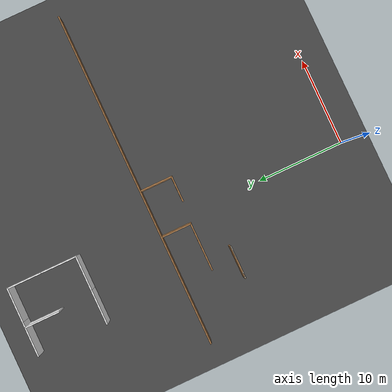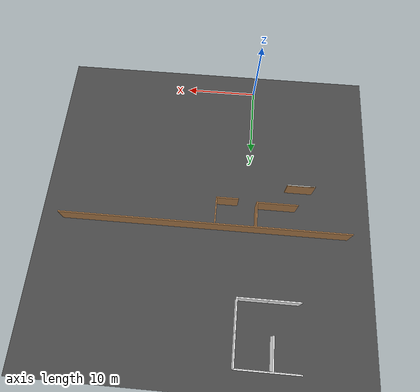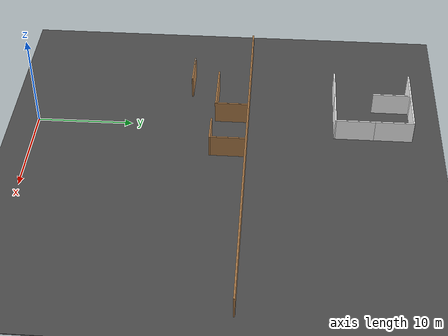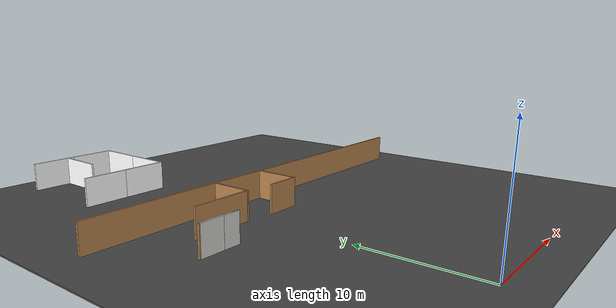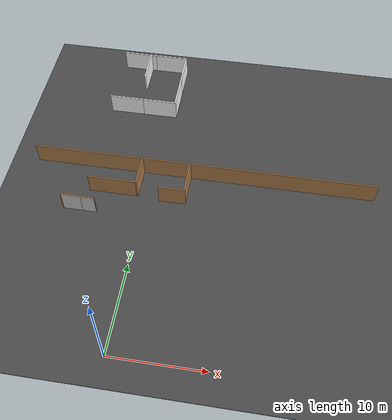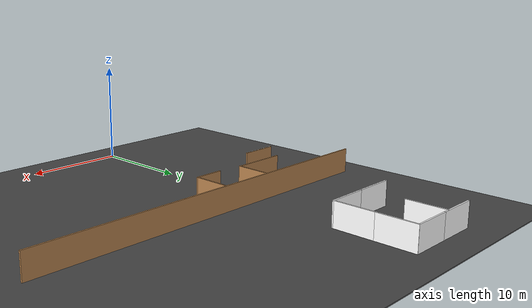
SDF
<sdf version="1.6">
 <world name="default">
  <model name="ground_plane">
   <static>1</static>
   <link name="link">
    <collision name="collision">
     <geometry><plane><normal>0 0 1</normal><size>100 100</size></plane></geometry>
     <surface><friction><ode><mu>100</mu><mu2>50</mu2></ode></friction></surface>
    </collision>
    <visual name="visual">
     <cast_shadows>0</cast_shadows>
     <geometry><plane><normal>0 0 1</normal><size>100 100</size></plane></geometry>
     <material>
      <script><uri>file://media/materials/scripts/gazebo.material</uri><name>Gazebo/Grey</name></script>
     </material>
    </visual>
   </link>
  </model>
  <model name="asphalt_plane">
   <static>1</static>
   <link name="link">
    <collision name="collision"><geometry><box><size>100 100 0.1</size></box></geometry></collision>
    <visual name="visual">
     <cast_shadows>0</cast_shadows>
     <geometry><box><size>100 100 0.1</size></box></geometry>
     <material>
      <script>
       <uri>model://asphalt_plane/materials/scripts</uri>
       <uri>model://asphalt_plane/materials/textures</uri>
       <name>vrc/asphalt</name>
      </script>
     </material>
    </visual>
   </link>
  </model>
  <model name="Hard_wall_wall_6_clone_7">
   <pose>-7.08346 16.0324 0 0 -0 1.57079</pose>
   <link name="Wall_0">
    <collision name="Wall_0_Collision">
     <geometry><box><size>3 0.15 2.5</size></box></geometry>
     <pose>0 0 1.25 0 -0 0</pose>
    </collision>
    <visual name="Wall_0_Visual">
     <pose>0 0 1.25 0 -0 0</pose>
     <geometry><box><size>3 0.15 2.5</size></box></geometry>
     <material>
      <script><uri>file://media/materials/scripts/gazebo.material</uri><name>Gazebo/CeilingTiled</name></script>
      <ambient>1 1 1 1</ambient>
     </material>
     <meta><layer>0</layer></meta>
    </visual>
    <pose>0 0 0 0 -0 1.5708</pose>
   </link>
   <static>1</static>
  </model>
  <model name="Medium_wall_wall_2">
   <pose>-0.863663 31.3819 0 0 -0 0</pose>
   <link name="Wall_0">
    <collision name="Wall_0_Collision">
     <geometry><box><size>4 0.15 2.5</size></box></geometry>
     <pose>0 0 1.25 0 -0 0</pose>
    </collision>
    <visual name="Wall_0_Visual">
     <pose>0 0 1.25 0 -0 0</pose>
     <geometry><box><size>4 0.15 2.5</size></box></geometry>
     <material>
      <script><uri>file://media/materials/scripts/gazebo.material</uri><name>Gazebo/Medium_walls</name></script>
      <ambient>1 1 1 1</ambient>
     </material>
     <meta><layer>0</layer></meta>
    </visual>
   </link>
   <static>1</static>
  </model>
  <model name="Medium_wall_wall_2_clone">
   <pose>-4.86366 31.3819 0 0 -0 0</pose>
   <link name="Wall_0">
    <collision name="Wall_0_Collision">
     <geometry><box><size>4 0.15 2.5</size></box></geometry>
     <pose>0 0 1.25 0 -0 0</pose>
    </collision>
    <visual name="Wall_0_Visual">
     <pose>0 0 1.25 0 -0 0</pose>
     <geometry><box><size>4 0.15 2.5</size></box></geometry>
     <material>
      <script><uri>file://media/materials/scripts/gazebo.material</uri><name>Gazebo/Medium_walls</name></script>
      <ambient>1 1 1 1</ambient>
     </material>
     <meta><layer>0</layer></meta>
    </visual>
   </link>
   <static>1</static>
  </model>
  <model name="Medium_wall_wall_2_clone_3">
   <pose>-0.863663 39.3819 0 0 -0 0</pose>
   <link name="Wall_0">
    <collision name="Wall_0_Collision">
     <geometry><box><size>4 0.15 2.5</size></box></geometry>
     <pose>0 0 1.25 0 -0 0</pose>
    </collision>
    <visual name="Wall_0_Visual">
     <pose>0 0 1.25 0 -0 0</pose>
     <geometry><box><size>4 0.15 2.5</size></box></geometry>
     <material>
      <script><uri>file://media/materials/scripts/gazebo.material</uri><name>Gazebo/Medium_walls</name></script>
      <ambient>1 1 1 1</ambient>
     </material>
     <meta><layer>0</layer></meta>
    </visual>
   </link>
   <static>1</static>
  </model>
  <model name="Medium_wall_wall_2_clone_4">
   <pose>-4.86366 39.3819 0 0 -0 0</pose>
   <link name="Wall_0">
    <collision name="Wall_0_Collision">
     <geometry><box><size>4 0.15 2.5</size></box></geometry>
     <pose>0 0 1.25 0 -0 0</pose>
    </collision>
    <visual name="Wall_0_Visual">
     <pose>0 0 1.25 0 -0 0</pose>
     <geometry><box><size>4 0.15 2.5</size></box></geometry>
     <material>
      <script><uri>file://media/materials/scripts/gazebo.material</uri><name>Gazebo/Medium_walls</name></script>
      <ambient>1 1 1 1</ambient>
     </material>
     <meta><layer>0</layer></meta>
    </visual>
   </link>
   <static>1</static>
  </model>
  <model name="Medium_wall_wall_3">
   <pose>1.06218 33.4428 0 0 -0 1.57079</pose>
   <link name="Wall_0">
    <collision name="Wall_0_Collision">
     <geometry><box><size>4 0.15 2.5</size></box></geometry>
     <pose>0 0 1.25 0 -0 0</pose>
    </collision>
    <visual name="Wall_0_Visual">
     <pose>0 0 1.25 0 -0 0</pose>
     <geometry><box><size>4 0.15 2.5</size></box></geometry>
     <material>
      <script><uri>file://media/materials/scripts/gazebo.material</uri><name>Gazebo/Medium_walls</name></script>
      <ambient>1 1 1 1</ambient>
     </material>
     <meta><layer>0</layer></meta>
    </visual>
   </link>
   <static>1</static>
  </model>
  <model name="Medium_wall_wall_3_clone">
   <pose>1.06218 37.4428 0 0 -0 1.57079</pose>
   <link name="Wall_0">
    <collision name="Wall_0_Collision">
     <geometry><box><size>4 0.15 2.5</size></box></geometry>
     <pose>0 0 1.25 0 -0 0</pose>
    </collision>
    <visual name="Wall_0_Visual">
     <pose>0 0 1.25 0 -0 0</pose>
     <geometry><box><size>4 0.15 2.5</size></box></geometry>
     <material>
      <script><uri>file://media/materials/scripts/gazebo.material</uri><name>Gazebo/Medium_walls</name></script>
      <ambient>1 1 1 1</ambient>
     </material>
     <meta><layer>0</layer></meta>
    </visual>
   </link>
   <static>1</static>
  </model>
  <model name="Medium_wall_wall_3_clone_2">
   <pose>-3.48128 37.3947 0 0 -0 1.57079</pose>
   <link name="Wall_0">
    <collision name="Wall_0_Collision">
     <geometry><box><size>4 0.15 2.5</size></box></geometry>
     <pose>0 0 1.25 0 -0 0</pose>
    </collision>
    <visual name="Wall_0_Visual">
     <pose>0 0 1.25 0 -0 0</pose>
     <geometry><box><size>4 0.15 2.5</size></box></geometry>
     <material>
      <script><uri>file://media/materials/scripts/gazebo.material</uri><name>Gazebo/Medium_walls</name></script>
      <ambient>1 1 1 1</ambient>
     </material>
     <meta><layer>0</layer></meta>
    </visual>
   </link>
   <static>1</static>
  </model>
  <model name="Soft_wall_v1_1">
   <pose>-14.3408 -3.86286 0 0 -0 0</pose>
   <link name="Wall_112">
    <collision name="Wall_112_Collision">
     <geometry><box><size>3.75 0.15 2.5</size></box></geometry>
     <pose>0 0 1.25 0 -0 0</pose>
    </collision>
    <visual name="Wall_112_Visual">
     <pose>0 0 1.25 0 -0 0</pose>
     <geometry><box><size>3.75 0.15 2.5</size></box></geometry>
     <material>
      <script><uri>file://media/materials/scripts/gazebo.material</uri><name>Gazebo/Wood</name></script>
      <ambient>1 1 1 1</ambient>
     </material>
     <meta><layer>0</layer></meta>
    </visual>
    <pose>18.799 24.2454 0 0 0 -1.5708</pose>
   </link>
   <link name="Wall_113">
    <collision name="Wall_113_Collision">
     <geometry><box><size>3 0.15 2.5</size></box></geometry>
     <pose>0 0 1.25 0 -0 0</pose>
    </collision>
    <visual name="Wall_113_Visual">
     <pose>0 0 1.25 0 -0 0</pose>
     <geometry><box><size>3 0.15 2.5</size></box></geometry>
     <material>
      <script><uri>file://media/materials/scripts/gazebo.material</uri><name>Gazebo/Wood</name></script>
      <ambient>1 1 1 1</ambient>
     </material>
     <meta><layer>0</layer></meta>
    </visual>
    <pose>17.374 22.4454 0 0 -0 3.14159</pose>
   </link>
   <link name="Wall_115">
    <collision name="Wall_115_Collision">
     <geometry><box><size>3.5 0.15 2.5</size></box></geometry>
     <pose>0 0 1.25 0 -0 0</pose>
    </collision>
    <visual name="Wall_115_Visual">
     <pose>0 0 1.25 0 -0 0</pose>
     <geometry><box><size>3.5 0.15 2.5</size></box></geometry>
     <material>
      <script><uri>file://media/materials/scripts/gazebo.material</uri><name>Gazebo/Wood</name></script>
      <ambient>1 1 1 1</ambient>
     </material>
     <meta><layer>0</layer></meta>
    </visual>
    <pose>13.3845 24.3704 0 0 0 -1.5708</pose>
   </link>
   <link name="Wall_125">
    <collision name="Wall_125_Collision">
     <geometry><box><size>5.5 0.15 2.5</size></box></geometry>
     <pose>0 0 1.25 0 -0 0</pose>
    </collision>
    <visual name="Wall_125_Visual">
     <pose>0 0 1.25 0 -0 0</pose>
     <geometry><box><size>5.5 0.15 2.5</size></box></geometry>
     <material>
      <script><uri>file://media/materials/scripts/gazebo.material</uri><name>Gazebo/Wood</name></script>
      <ambient>1 1 1 1</ambient>
     </material>
     <meta><layer>0</layer></meta>
    </visual>
    <pose>10.7066 22.7229 0 0 -0 0</pose>
   </link>
   <link name="Wall_134">
    <collision name="Wall_134_Collision">
     <geometry><box><size>3.75 0.15 2.5</size></box></geometry>
     <pose>0 0 1.25 0 -0 0</pose>
    </collision>
    <visual name="Wall_134_Visual">
     <pose>0 0 1.25 0 -0 0</pose>
     <geometry><box><size>3.75 0.15 2.5</size></box></geometry>
     <material>
      <script><uri>file://media/materials/scripts/gazebo.material</uri><name>Gazebo/Wood</name></script>
      <ambient>1 1 1 1</ambient>
     </material>
     <meta><layer>0</layer></meta>
    </visual>
    <pose>7.54321 19.9124 0 0 -0 0</pose>
   </link>
   <link name="Wall_17">
    <collision name="Wall_17_Collision">
     <geometry><box><size>38.5 0.15 2.5</size></box></geometry>
     <pose>0 0 1.25 0 -0 0</pose>
    </collision>
    <visual name="Wall_17_Visual">
     <pose>0 0 1.25 0 -0 0</pose>
     <geometry><box><size>38.5 0.15 2.5</size></box></geometry>
     <material>
      <script><uri>file://media/materials/scripts/gazebo.material</uri><name>Gazebo/Wood</name></script>
      <ambient>1 1 1 1</ambient>
     </material>
     <meta><layer>0</layer></meta>
    </visual>
    <pose>20.2105 26.1459 0 0 -0 0</pose>
   </link>
   <static>1</static>
  </model>
  <model name="Hard_wall_wall_6_clone_8_clone">
   <pose>-5.68382 16.0275 0 0 -0 1.57079</pose>
   <link name="Wall_0">
    <collision name="Wall_0_Collision">
     <geometry><box><size>1.5 0.15 2.5</size></box></geometry>
     <pose>0 0 1.25 0 -0 0</pose>
    </collision>
    <visual name="Wall_0_Visual">
     <pose>0 0 1.25 0 -0 0</pose>
     <geometry><box><size>1.5 0.15 2.5</size></box></geometry>
     <material>
      <script><uri>file://media/materials/scripts/gazebo.material</uri><name>Gazebo/CeilingTiled</name></script>
      <ambient>1 1 1 1</ambient>
     </material>
     <meta><layer>0</layer></meta>
    </visual>
    <pose>0 0 0 0 -0 1.5708</pose>
   </link>
   <static>1</static>
  </model>
 </world>
</sdf>
